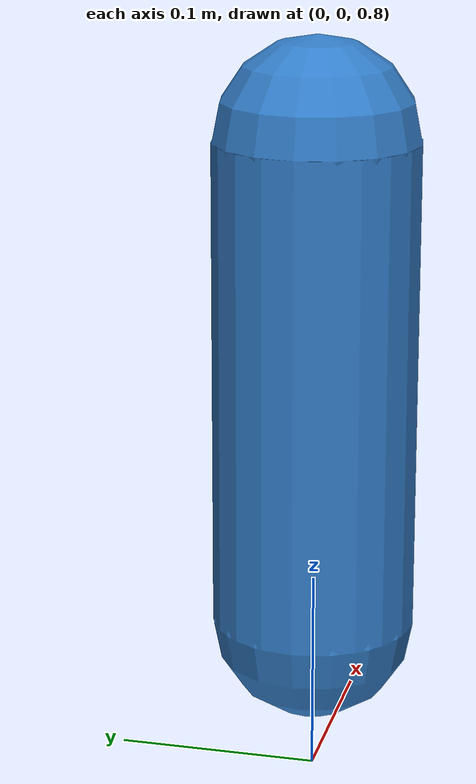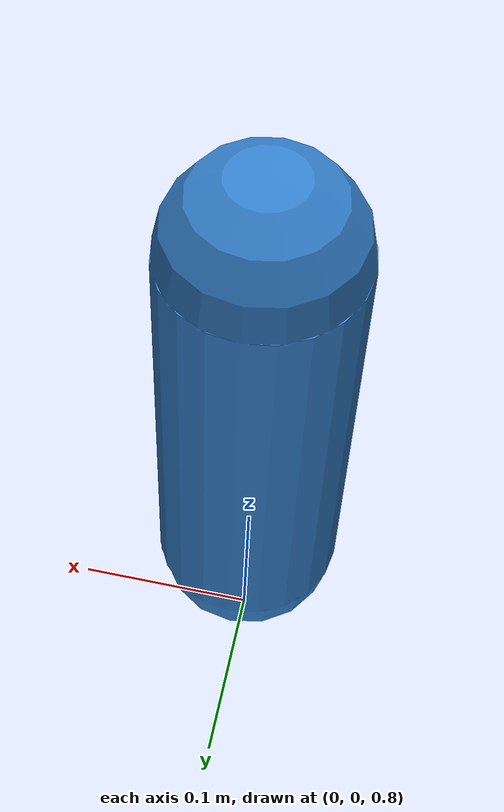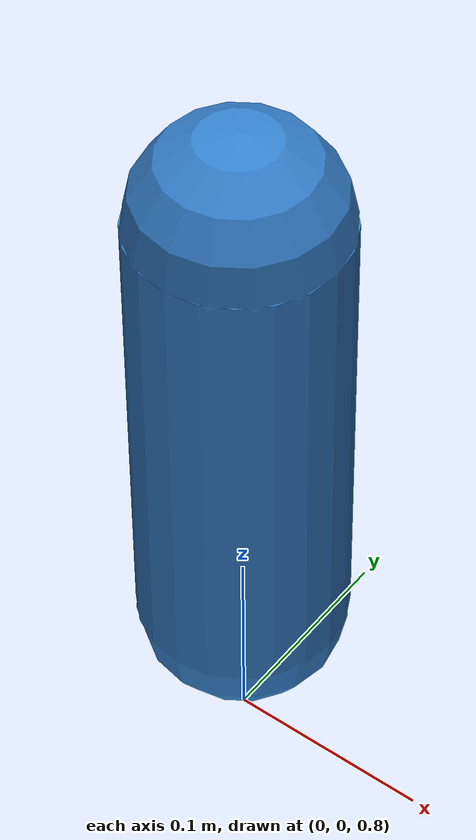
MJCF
<mujoco model="hello_world">
  <option timestep="0.002" gravity="0 0 -9.81"/>

  <visual>
    <headlight ambient="0.6 0.6 0.6" diffuse="0.8 0.8 0.8" specular="0.2 0.2 0.2"/>
  </visual>

  <worldbody>
    <light pos="0 0 3" dir="0 0 -1"/>
    <geom name="floor" type="plane" size="2 2 0.1" rgba="0.9 0.9 0.9 1"/>

    <body name="probe_body" pos="0 0 1">
      <freejoint/>
      <geom name="probe_geom" type="capsule" fromto="0 0 -0.12 0 0 0.12" size="0.05" rgba="0.2 0.5 0.8 1"/>
    </body>
  </worldbody>
</mujoco>
